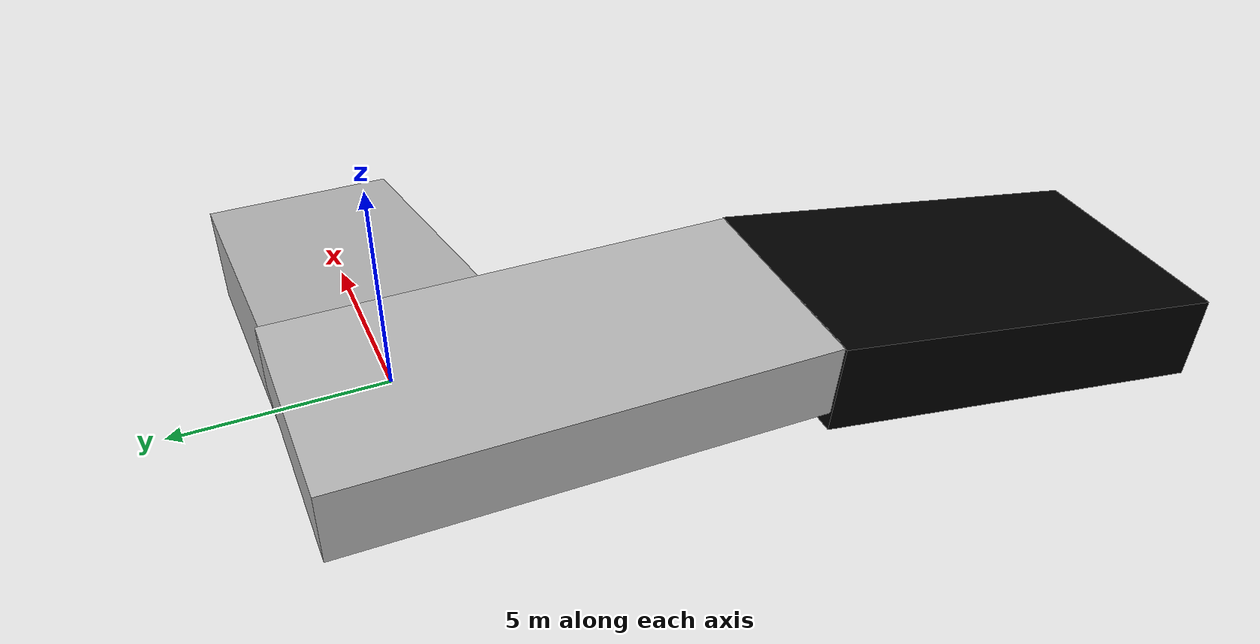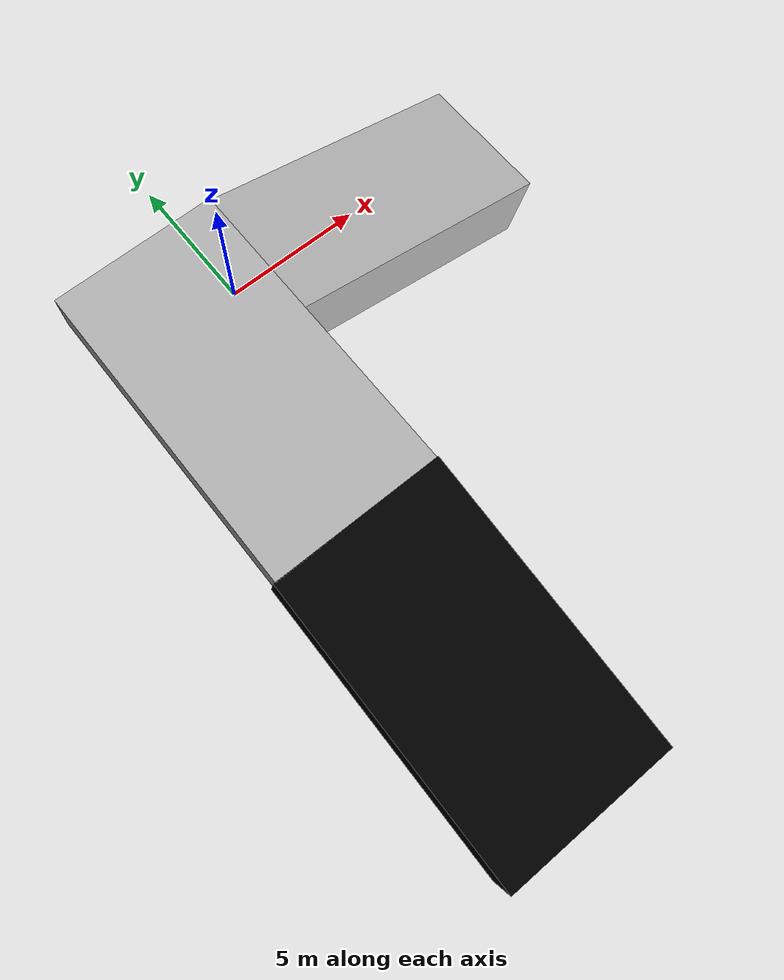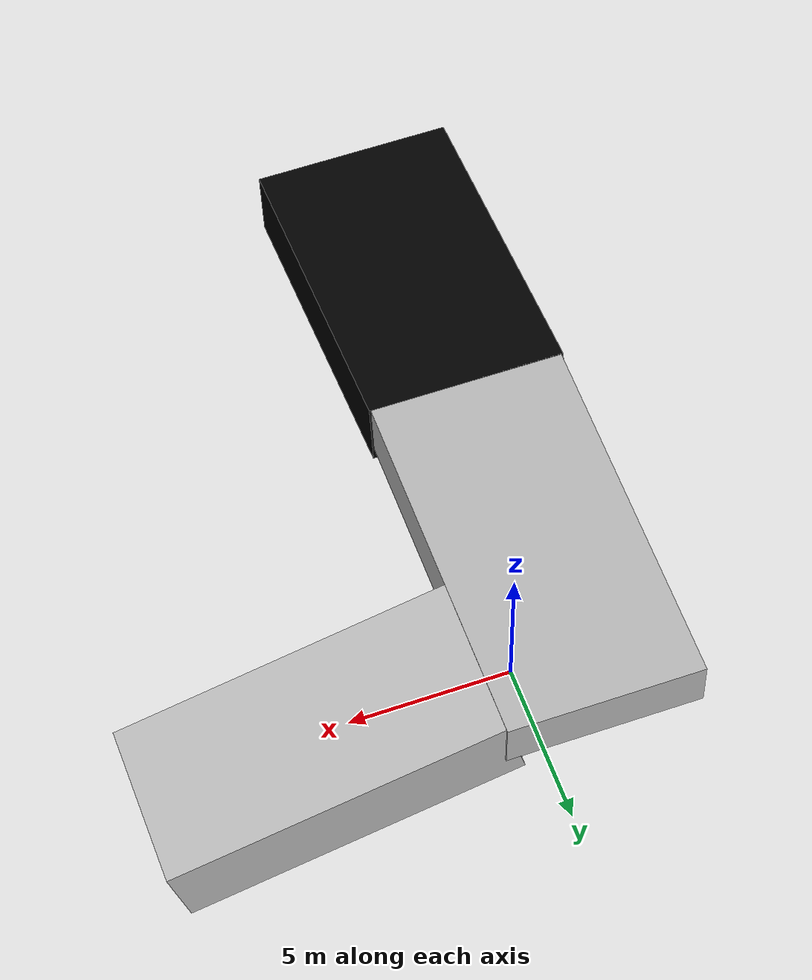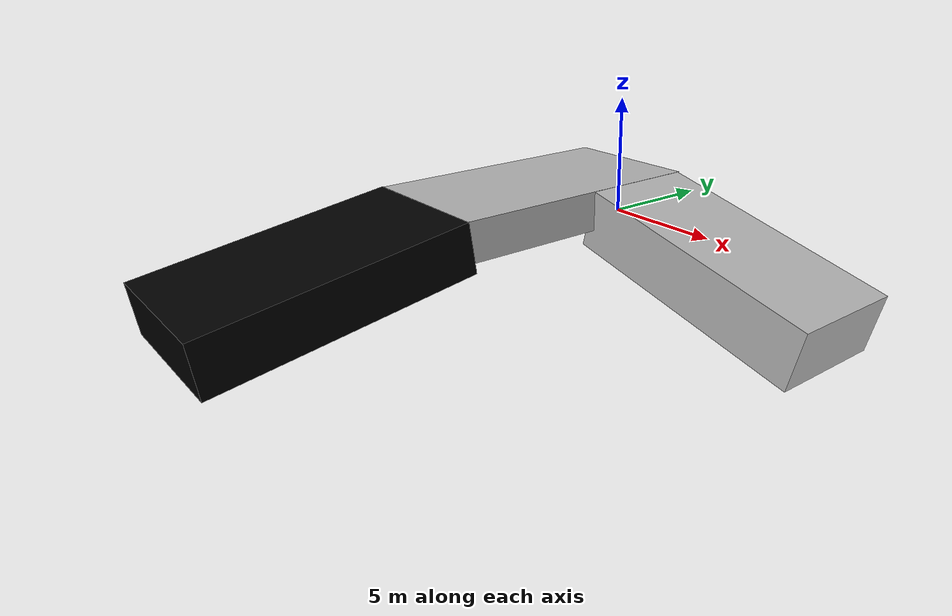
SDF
<?xml version='1.0'?>
<sdf version='1.7'>
  <model name='slope1_0'>
    <link name='slope_down'>
      <pose>5.93381 0.005402 -0.964279 0 0.248274 0</pose>
      <self_collide>0</self_collide>
      <kinematic>0</kinematic>
      <gravity>1</gravity>
      <enable_wind>0</enable_wind>
      <inertial>
        <inertia>
          <ixx>0</ixx>
          <ixy>0</ixy>
          <ixz>0</ixz>
          <iyy>0</iyy>
          <iyz>0</iyz>
          <izz>0</izz>
        </inertia>
        <mass>0</mass>
        <pose>0 0 0 0 -0 0</pose>
      </inertial>
      <visual name='visual'>
        <geometry>
          <box>
            <size>10.6012 5.12132 2.52711</size>
          </box>
        </geometry>
        <material>
          <shader type='pixel'/>
        </material>
        <pose>0 0 0 0 -0 0</pose>
        <transparency>0</transparency>
        <cast_shadows>1</cast_shadows>
      </visual>
      <collision name='collision'>
        <laser_retro>0</laser_retro>
        <max_contacts>10</max_contacts>
        <pose>0 0 0 0 -0 0</pose>
        <geometry>
          <box>
            <size>10.6012 5.12132 2.52711</size>
          </box>
        </geometry>
        <surface>
          <friction>
            <ode>
              <mu>1</mu>
              <mu2>1</mu2>
              <fdir1>0 0 0</fdir1>
              <slip1>0</slip1>
              <slip2>0</slip2>
            </ode>
            <torsional>
              <coefficient>1</coefficient>
              <patch_radius>0</patch_radius>
              <surface_radius>0</surface_radius>
              <use_patch_radius>1</use_patch_radius>
              <ode>
                <slip>0</slip>
              </ode>
            </torsional>
          </friction>
          <bounce>
            <restitution_coefficient>0</restitution_coefficient>
            <threshold>1e+06</threshold>
          </bounce>
          <contact>
            <collide_without_contact>0</collide_without_contact>
            <collide_without_contact_bitmask>1</collide_without_contact_bitmask>
            <collide_bitmask>1</collide_bitmask>
            <ode>
              <soft_cfm>0</soft_cfm>
              <soft_erp>0.2</soft_erp>
              <kp>1e+13</kp>
              <kd>1</kd>
              <max_vel>0.01</max_vel>
              <min_depth>0</min_depth>
            </ode>
            <bullet>
              <split_impulse>1</split_impulse>
              <split_impulse_penetration_threshold>-0.01</split_impulse_penetration_threshold>
              <soft_cfm>0</soft_cfm>
              <soft_erp>0.2</soft_erp>
              <kp>1e+13</kp>
              <kd>1</kd>
            </bullet>
          </contact>
        </surface>
      </collision>
    </link>
    <link name='slope_down_clone'>
      <pose>-1.94579 -14.114 -0.316046 -0 0.156297 -1.57224</pose>
      <self_collide>0</self_collide>
      <kinematic>0</kinematic>
      <gravity>1</gravity>
      <enable_wind>0</enable_wind>
      <inertial>
        <inertia>
          <ixx>0</ixx>
          <ixy>0</ixy>
          <ixz>0</ixz>
          <iyy>0</iyy>
          <iyz>0</iyz>
          <izz>0</izz>
        </inertia>
        <mass>0</mass>
        <pose>0 0 0 0 -0 0</pose>
      </inertial>
      <visual name='visual'>
        <geometry>
          <box>
            <size>10.7052 6.21594 2.1332</size>
          </box>
        </geometry>
        <material>
          <shader type='pixel'>
            <normal_map>__default__</normal_map>
          </shader>
          <script>
            <name>ModelPreview_1::slope_down_clone::visual_MATERIAL_</name>
            <uri>__default__</uri>
          </script>
          <ambient>0 0 0 1</ambient>
          <diffuse>0 0 0 1</diffuse>
          <specular>0 0 0 1</specular>
          <emissive>0 0 0 1</emissive>
        </material>
        <pose>0 0 0 0 -0 0</pose>
        <transparency>0</transparency>
        <cast_shadows>1</cast_shadows>
      </visual>
      <collision name='collision'>
        <laser_retro>0</laser_retro>
        <max_contacts>10</max_contacts>
        <pose>0 0 0 0 -0 0</pose>
        <geometry>
          <box>
            <size>10.7052 6.21594 2.1332</size>
          </box>
        </geometry>
        <surface>
          <friction>
            <ode>
              <mu>1</mu>
              <mu2>1</mu2>
              <fdir1>0 0 0</fdir1>
              <slip1>0</slip1>
              <slip2>0</slip2>
            </ode>
            <torsional>
              <coefficient>1</coefficient>
              <patch_radius>0</patch_radius>
              <surface_radius>0</surface_radius>
              <use_patch_radius>1</use_patch_radius>
              <ode>
                <slip>0</slip>
              </ode>
            </torsional>
          </friction>
          <bounce>
            <restitution_coefficient>0</restitution_coefficient>
            <threshold>1e+06</threshold>
          </bounce>
          <contact>
            <collide_without_contact>0</collide_without_contact>
            <collide_without_contact_bitmask>1</collide_without_contact_bitmask>
            <collide_bitmask>1</collide_bitmask>
            <ode>
              <soft_cfm>0</soft_cfm>
              <soft_erp>0.2</soft_erp>
              <kp>1e+13</kp>
              <kd>1</kd>
              <max_vel>0.01</max_vel>
              <min_depth>0</min_depth>
            </ode>
            <bullet>
              <split_impulse>1</split_impulse>
              <split_impulse_penetration_threshold>-0.01</split_impulse_penetration_threshold>
              <soft_cfm>0</soft_cfm>
              <soft_erp>0.2</soft_erp>
              <kp>1e+13</kp>
              <kd>1</kd>
            </bullet>
          </contact>
        </surface>
      </collision>
    </link>
    <link name='slope_zero'>
      <pose>-1.92902 -3.18844 0.7221 0 -0 0</pose>
      <self_collide>0</self_collide>
      <kinematic>0</kinematic>
      <gravity>1</gravity>
      <enable_wind>0</enable_wind>
      <inertial>
        <inertia>
          <ixx>0</ixx>
          <ixy>0</ixy>
          <ixz>0</ixz>
          <iyy>0</iyy>
          <iyz>0</iyz>
          <izz>0</izz>
        </inertia>
        <mass>0</mass>
        <pose>0 0 0 0 -0 0</pose>
      </inertial>
      <visual name='visual'>
        <geometry>
          <box>
            <size>6.10024 11.649 1.69097</size>
          </box>
        </geometry>
        <material>
          <shader type='pixel'>
            <normal_map>__default__</normal_map>
          </shader>
        </material>
        <pose>0 0 0 0 -0 0</pose>
        <transparency>0</transparency>
        <cast_shadows>1</cast_shadows>
      </visual>
      <collision name='collision'>
        <laser_retro>0</laser_retro>
        <max_contacts>10</max_contacts>
        <pose>0 0 0 0 -0 0</pose>
        <geometry>
          <box>
            <size>6.10024 11.649 1.69097</size>
          </box>
        </geometry>
        <surface>
          <friction>
            <ode>
              <mu>1</mu>
              <mu2>1</mu2>
              <fdir1>0 0 0</fdir1>
              <slip1>0</slip1>
              <slip2>0</slip2>
            </ode>
            <torsional>
              <coefficient>1</coefficient>
              <patch_radius>0</patch_radius>
              <surface_radius>0</surface_radius>
              <use_patch_radius>1</use_patch_radius>
              <ode>
                <slip>0</slip>
              </ode>
            </torsional>
          </friction>
          <bounce>
            <restitution_coefficient>0</restitution_coefficient>
            <threshold>1e+06</threshold>
          </bounce>
          <contact>
            <collide_without_contact>0</collide_without_contact>
            <collide_without_contact_bitmask>1</collide_without_contact_bitmask>
            <collide_bitmask>1</collide_bitmask>
            <ode>
              <soft_cfm>0</soft_cfm>
              <soft_erp>0.2</soft_erp>
              <kp>1e+13</kp>
              <kd>1</kd>
              <max_vel>0.01</max_vel>
              <min_depth>0</min_depth>
            </ode>
            <bullet>
              <split_impulse>1</split_impulse>
              <split_impulse_penetration_threshold>-0.01</split_impulse_penetration_threshold>
              <soft_cfm>0</soft_cfm>
              <soft_erp>0.2</soft_erp>
              <kp>1e+13</kp>
              <kd>1</kd>
            </bullet>
          </contact>
        </surface>
      </collision>
    </link>
    <static>1</static>
    <allow_auto_disable>1</allow_auto_disable>
  </model>
</sdf>
